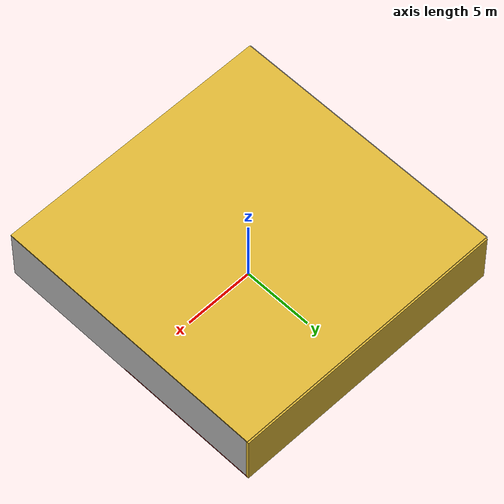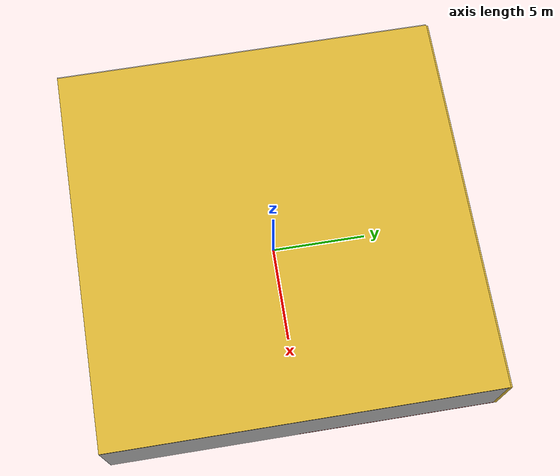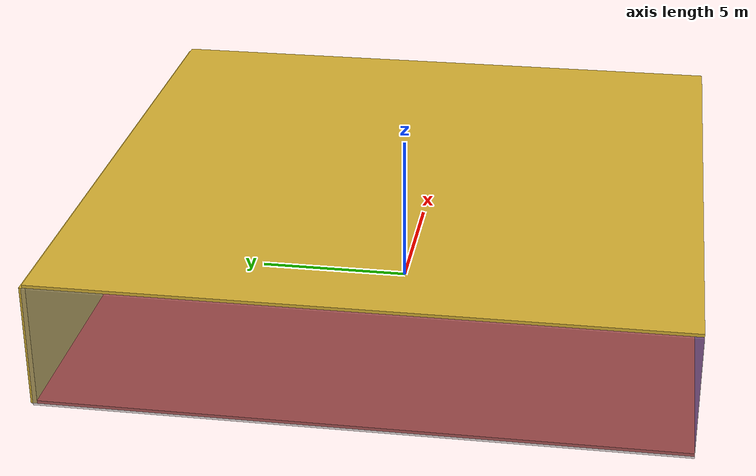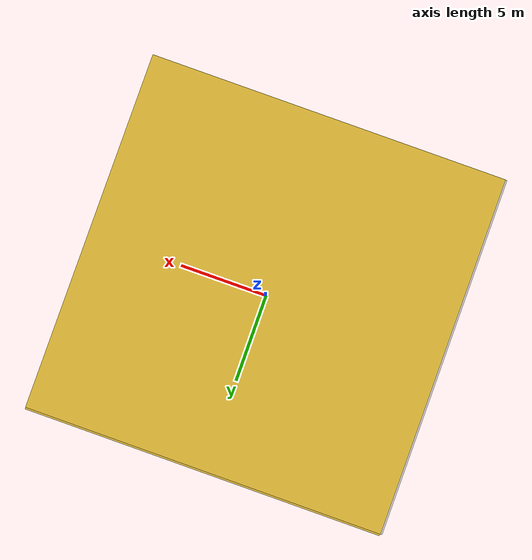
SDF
<sdf version="1.4">
 <world name="default">
  <physics type="ode">
   <max_step_size>0.001</max_step_size>
   <real_time_factor>1</real_time_factor>
   <real_time_update_rate>1000</real_time_update_rate>
   <gravity>0 0 -9.8</gravity>
  </physics>
  <scene><ambient>0.4 0.4 0.4 1</ambient><background>0.7 0.7 0.7 1</background><shadows>1</shadows></scene>
  <model name="Surrounding">
   <static>1</static>
   <link name="Ceiling">
    <collision name="Ceiling_Collision"><geometry><box><size>20 20 0.1</size></box></geometry></collision>
    <visual name="Ceiling_Visual">
     <geometry><box><size>20 20 0.1</size></box></geometry>
     <material>
      <script><uri>file://media/materials/scripts/gazebo.material</uri><name>Gazebo/Gold</name></script>
     </material>
    </visual>
    <pose>0 0 4.05 0 0 0</pose>
   </link>
   <link name="Wall_South">
    <collision name="Wall_South_Collision">
     <geometry><box><size>20 0 4</size></box></geometry>
     <pose>0 0 2 0 -0 0</pose>
    </collision>
    <visual name="Wall_South_Visual">
     <pose>0 0 2 0 -0 0</pose>
     <geometry><box><size>20 0 4</size></box></geometry>
     <material>
      <script><uri>file://media/materials/scripts/gazebo.material</uri><name>Gazebo/Purple</name></script>
     </material>
    </visual>
    <velocity_decay><linear>0</linear><angular>0</angular></velocity_decay>
    <pose>0 -10 0 0 -0 0</pose>
   </link>
   <link name="Wall_East">
    <collision name="Wall_21_Collision">
     <geometry><box><size>20 0 4</size></box></geometry>
     <pose>0 0 2 0 -0 0</pose>
    </collision>
    <visual name="Wall_21_Visual">
     <pose>0 0 2 0 -0 0</pose>
     <geometry><box><size>20 0 4</size></box></geometry>
     <material>
      <script><uri>file://media/materials/scripts/gazebo.material</uri><name>Gazebo/LightOff</name></script>
     </material>
    </visual>
    <velocity_decay><linear>0</linear><angular>0</angular></velocity_decay>
    <pose>10 0 0 0 -0 1.5708</pose>
   </link>
   <link name="Wall_North">
    <collision name="Wall_22_Collision">
     <geometry><box><size>20 0.2 4</size></box></geometry>
     <pose>0 0 2 0 -0 0</pose>
    </collision>
    <visual name="Wall_22_Visual">
     <pose>0 0 2 0 -0 0</pose>
     <geometry><box><size>20 0.2 4</size></box></geometry>
     <material>
      <script><uri>file://media/materials/scripts/gazebo.material</uri><name>Gazebo/Gold</name></script>
     </material>
    </visual>
    <velocity_decay><linear>0</linear><angular>0</angular></velocity_decay>
    <pose>0 10 0 0 -0 0</pose>
   </link>
   <link name="Wall_West">
    <collision name="Wall_23_Collision">
     <geometry><box><size>20 0.2 4</size></box></geometry>
     <pose>0 0 2 0 -0 0</pose>
    </collision>
    <visual name="Wall_23_Visual">
     <pose>0 0 2 0 -0 0</pose>
     <geometry><box><size>20 0.2 4</size></box></geometry>
     <material>
      <script><uri>file://media/materials/scripts/gazebo.material</uri><name>Gazebo/GreyTransparent</name></script>
     </material>
    </visual>
    <velocity_decay><linear>0</linear><angular>0</angular></velocity_decay>
    <pose>-10 0 0 0 0 -1.5708</pose>
   </link>
   <link name="Ground_link">
    <collision name="collision">
     <pose>0 0 .05 0 -0 0</pose>
     <geometry><box><size>20 20 0.1</size></box></geometry>
    </collision>
    <visual name="visual">
     <pose>0 0 .05 0 -0 0</pose>
     <geometry><box><size>20 20 0.1</size></box></geometry>
     <material>
      <script><uri>file://media/materials/scripts/gazebo.material</uri><name>Gazebo/Red</name></script>
     </material>
    </visual>
   </link>
   <static>1</static>
  </model>
  <spherical_coordinates>
   <surface_model>EARTH_WGS84</surface_model>
   <latitude_deg>0</latitude_deg>
   <longitude_deg>0</longitude_deg>
   <elevation>0</elevation>
   <heading_deg>0</heading_deg>
  </spherical_coordinates>
  <light name="lightball_0" type="diffuse">
   <diffuse>0.8 0.8 0.8 1</diffuse>
   <specular>0.2 0.2 0.2 1</specular>
   <attenuation>
    <range>100</range>
    <constant>0.7</constant>
    <linear>0.01</linear>
    <quadratic>0.001</quadratic>
   </attenuation>
   <direction>-0.5 0.1 -0.9</direction>
   <pose>-1.27389580333 -0.878908120888 2.73779341928 0 0 0</pose>
  </light>
  <light name="lightball_1" type="diffuse">
   <diffuse>0.8 0.8 0.8 1</diffuse>
   <specular>0.2 0.2 0.2 1</specular>
   <attenuation>
    <range>100</range>
    <constant>0.7</constant>
    <linear>0.01</linear>
    <quadratic>0.001</quadratic>
   </attenuation>
   <direction>-0.5 0.1 -0.9</direction>
   <pose>-8.90560347713 8.31405056356 1.85146506405 0 0 0</pose>
  </light>
  <light name="lightball_2" type="diffuse">
   <diffuse>0.8 0.8 0.8 1</diffuse>
   <specular>0.2 0.2 0.2 1</specular>
   <attenuation>
    <range>100</range>
    <constant>0.7</constant>
    <linear>0.01</linear>
    <quadratic>0.001</quadratic>
   </attenuation>
   <direction>-0.5 0.1 -0.9</direction>
   <pose>-0.688253139558 2.826313812 3.37759505643 0 0 0</pose>
  </light>
  <light name="lightball_3" type="diffuse">
   <diffuse>0.8 0.8 0.8 1</diffuse>
   <specular>0.2 0.2 0.2 1</specular>
   <attenuation>
    <range>100</range>
    <constant>0.7</constant>
    <linear>0.01</linear>
    <quadratic>0.001</quadratic>
   </attenuation>
   <direction>-0.5 0.1 -0.9</direction>
   <pose>8.97736052714 1.6108335002 3.11456438675 0 0 0</pose>
  </light>
  <light name="lightball_4" type="diffuse">
   <diffuse>0.8 0.8 0.8 1</diffuse>
   <specular>0.2 0.2 0.2 1</specular>
   <attenuation>
    <range>100</range>
    <constant>0.7</constant>
    <linear>0.01</linear>
    <quadratic>0.001</quadratic>
   </attenuation>
   <direction>-0.5 0.1 -0.9</direction>
   <pose>-4.44938622726 -6.99155554905 3.40265022357 0 0 0</pose>
  </light>
  <light name="lightball_5" type="diffuse">
   <diffuse>0.8 0.8 0.8 1</diffuse>
   <specular>0.2 0.2 0.2 1</specular>
   <attenuation>
    <range>100</range>
    <constant>0.7</constant>
    <linear>0.01</linear>
    <quadratic>0.001</quadratic>
   </attenuation>
   <direction>-0.5 0.1 -0.9</direction>
   <pose>-3.21991962095 8.58193466293 1.15530329017 0 0 0</pose>
  </light>
  <light name="lightball_6" type="diffuse">
   <diffuse>0.8 0.8 0.8 1</diffuse>
   <specular>0.2 0.2 0.2 1</specular>
   <attenuation>
    <range>100</range>
    <constant>0.7</constant>
    <linear>0.01</linear>
    <quadratic>0.001</quadratic>
   </attenuation>
   <direction>-0.5 0.1 -0.9</direction>
   <pose>-1.69120417049 -2.38129482565 2.79049132287 0 0 0</pose>
  </light>
  <light name="lightball_7" type="diffuse">
   <diffuse>0.8 0.8 0.8 1</diffuse>
   <specular>0.2 0.2 0.2 1</specular>
   <attenuation>
    <range>100</range>
    <constant>0.7</constant>
    <linear>0.01</linear>
    <quadratic>0.001</quadratic>
   </attenuation>
   <direction>-0.5 0.1 -0.9</direction>
   <pose>3.39979091714 -1.55033893516 3.75180441251 0 0 0</pose>
  </light>
  <include>
   <uri>model://textured_shapes</uri>
   <pose>-1.22149834662 -8.22189652555 0 0 0 0.898517333561</pose>
  </include>
  <include>
   <uri>model://robocup_3Dsim_goal</uri>
   <pose>3.94342705096 -1.16056081008 0 0 0 1.971234182</pose>
  </include>
  <include><uri>model://cabinet</uri><pose>7.06513374382 -7.96602382207 0 0 0 0.153249841793</pose></include>
  <include><uri>model://cabinet</uri><pose>6.93841537267 4.79577164273 0 0 0 3.06932099114</pose></include>
 </world>
</sdf>

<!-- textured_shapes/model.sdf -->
<sdf version="1.6">
  <model name="textured_shapes">
    <pose>0 0 0.5 0 0 0</pose>
    <link name="box">
      <pose>0 -1.5 0 0 0 0</pose>
      <collision name="collision">
        <geometry>
          <box>
            <size>1 1 1</size>
          </box>
        </geometry>
      </collision>
      <visual name="visual">
        <geometry>
          <box>
            <size>1 1 1</size>
          </box>
        </geometry>
        <material>
          <script>
            <uri>model://../model_source/models/textured_shapes/materials/scripts</uri>
            <uri>model://../model_source/models/textured_shapes/materials/textures</uri>
            <name>TexturedShape/Squares</name>
          </script>
        </material>
      </visual>
    </link>
    <link name="sphere">
      <collision name="collision">
        <geometry>
          <sphere>
            <radius>0.5</radius>
          </sphere>
        </geometry>
      </collision>
      <visual name="visual">
        <geometry>
          <sphere>
            <radius>0.5</radius>
          </sphere>
        </geometry>
        <material>
          <script>
            <uri>model://../model_source/models/textured_shapes/materials/scripts</uri>
            <uri>model://../model_source/models/textured_shapes/materials/textures</uri>
            <name>TexturedShape/Squares</name>
          </script>
        </material>
      </visual>
    </link>
    <link name="cylinder">
      <pose>0 1.5 0 0 0 0</pose>
      <collision name="collision">
        <geometry>
          <cylinder>
            <radius>0.5</radius>
            <length>1</length>
          </cylinder>
        </geometry>
      </collision>
      <visual name="visual">
        <geometry>
          <cylinder>
            <radius>0.5</radius>
            <length>1</length>
          </cylinder>
        </geometry>
        <material>
          <script>
            <uri>model://../model_source/models/textured_shapes/materials/scripts</uri>
            <uri>model://../model_source/models/textured_shapes/materials/textures</uri>
            <name>TexturedShape/Squares</name>
          </script>
        </material>
      </visual>
    </link>
  </model>
</sdf>

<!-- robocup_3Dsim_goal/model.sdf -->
<sdf version="1.5">
  <model name="robocup_3d_goal">
    <static>true</static>
    <link name="left_post">
      <pose>0 1.05 0.45 0 0 0</pose>
      <collision name="collision">
        <geometry>
          <cylinder>
            <radius>0.05</radius>
            <length>0.9</length>
          </cylinder>
        </geometry>
      </collision>
      <visual name="visual">
        <geometry>
          <cylinder>
            <radius>0.05</radius>
            <length>0.9</length>
          </cylinder>
        </geometry>
        <material>
          <script>
            <uri>file://media/materials/scripts/gazebo.material</uri>
            <name>Gazebo/ZincYellow</name>
          </script>
        </material>
      </visual>
    </link>
    <link name="left_support_horiz_lower">
      <pose>0.30 1.05 0.01 0 0 0</pose>
      <collision name="collision">
        <geometry>
          <box>
            <size>0.50 0.02 0.02</size>
          </box>
        </geometry>
      </collision>
      <visual name="visual">
        <geometry>
          <box>
            <size>0.50 0.02 0.02</size>
          </box>
        </geometry>
        <material>
          <script>
            <uri>file://media/materials/scripts/gazebo.material</uri>
            <name>Gazebo/White</name>
          </script>
        </material>
      </visual>
    </link>
    <link name="left_support_horiz_upper">
      <pose>0.30 1.05 0.79 0 0 0</pose>
      <collision name="collision">
        <geometry>
          <box>
            <size>0.50 0.02 0.02</size>
          </box>
        </geometry>
      </collision>
      <visual name="visual">
        <geometry>
          <box>
            <size>0.50 0.02 0.02</size>
          </box>
        </geometry>
        <material>
          <script>
            <uri>file://media/materials/scripts/gazebo.material</uri>
            <name>Gazebo/White</name>
          </script>
        </material>
      </visual>
    </link>
    <link name="left_support_vertical">
      <pose>0.56 1.05 0.4 0 1.5708 0</pose>
      <collision name="collision">
        <geometry>
          <box>
            <size>0.80 0.02 0.02</size>
          </box>
        </geometry>
      </collision>
      <visual name="visual">
        <geometry>
          <box>
            <size>0.80 0.02 0.02</size>
          </box>
        </geometry>
        <material>
          <script>
            <uri>file://media/materials/scripts/gazebo.material</uri>
            <name>Gazebo/White</name>
          </script>
        </material>
      </visual>
    </link>
    <link name="right_support_horiz_lower">
      <pose>0.30 -1.05 0.01 0 0 0</pose>
      <collision name="collision">
        <geometry>
          <box>
            <size>0.50 0.02 0.02</size>
          </box>
        </geometry>
      </collision>
      <visual name="visual">
        <geometry>
          <box>
            <size>0.50 0.02 0.02</size>
          </box>
        </geometry>
        <material>
          <script>
            <uri>file://media/materials/scripts/gazebo.material</uri>
            <name>Gazebo/White</name>
          </script>
        </material>
      </visual>
    </link>
    <link name="right_support_horiz_upper">
      <pose>0.30 -1.05 0.79 0 0 0</pose>
      <collision name="collision">
        <geometry>
          <box>
            <size>0.50 0.02 0.02</size>
          </box>
        </geometry>
      </collision>
      <visual name="visual">
        <geometry>
          <box>
            <size>0.50 0.02 0.02</size>
          </box>
        </geometry>
        <material>
          <script>
            <uri>file://media/materials/scripts/gazebo.material</uri>
            <name>Gazebo/White</name>
          </script>
        </material>
      </visual>
    </link>
    <link name="right_support_vertical">
      <pose>0.56 -1.05 0.4 0 1.5708 0</pose>
      <collision name="collision">
        <geometry>
          <box>
            <size>0.80 0.02 0.02</size>
          </box>
        </geometry>
      </collision>
      <visual name="visual">
        <geometry>
          <box>
            <size>0.80 0.02 0.02</size>
          </box>
        </geometry>
        <material>
          <script>
            <uri>file://media/materials/scripts/gazebo.material</uri>
            <name>Gazebo/White</name>
          </script>
        </material>
      </visual>
    </link>
    <link name="center_support_horiz_lower">
      <pose>0.56 0 0.01 0 1.5708 0</pose>
      <collision name="collision">
        <geometry>
          <box>
            <size>0.02 2.08 0.02</size>
          </box>
        </geometry>
      </collision>
      <visual name="visual">
        <geometry>
          <box>
            <size>0.02 2.08 0.02</size>
          </box>
        </geometry>
        <material>
          <script>
            <uri>file://media/materials/scripts/gazebo.material</uri>
            <name>Gazebo/White</name>
          </script>
        </material>
      </visual>
    </link>
    <link name="center_support_horiz_upper">
      <pose>0.56 0 0.79 0 1.5708 0</pose>
      <collision name="collision">
        <geometry>
          <box>
            <size>0.02 2.08 0.02</size>
          </box>
        </geometry>
      </collision>
      <visual name="visual">
        <geometry>
          <box>
            <size>0.02 2.08 0.02</size>
          </box>
        </geometry>
        <material>
          <script>
            <uri>file://media/materials/scripts/gazebo.material</uri>
            <name>Gazebo/White</name>
          </script>
        </material>
      </visual>
    </link>
    <link name="right_post">
      <pose>0 -1.05 0.45 0 0 0</pose>
      <collision name="collision">
        <geometry>
          <cylinder>
            <radius>0.05</radius>
            <length>0.9</length>
          </cylinder>
        </geometry>
      </collision>
      <visual name="visual">
        <geometry>
          <cylinder>
            <radius>0.05</radius>
            <length>0.9</length>
          </cylinder>
        </geometry>
        <material>
          <script>
            <uri>file://media/materials/scripts/gazebo.material</uri>
            <name>Gazebo/ZincYellow</name>
          </script>
        </material>
      </visual>
    </link>
    <link name="crossbar">
      <pose>0 0 0.85 1.57 1.57 0</pose>
      <collision name="collision">
        <geometry>
          <cylinder>
            <radius>0.05</radius>
            <length>2.0</length>
          </cylinder>
        </geometry>
      </collision>
      <visual name="visual">
        <geometry>
          <cylinder>
            <radius>0.05</radius>
            <length>2.0</length>
          </cylinder>
        </geometry>
        <material>
          <script>
            <uri>file://media/materials/scripts/gazebo.material</uri>
            <name>Gazebo/ZincYellow</name>
          </script>
        </material>
      </visual>
    </link>
    <link name="center_net">
      <pose>0.56 0 0.40 0 0 0</pose>
      <collision name="collision">
        <geometry>
          <box>
            <size>0.01 2.1 0.80</size>
          </box>
        </geometry>
      </collision>
      <visual name="visual">
        <geometry>
          <box>
            <size>0.01 2.1 0.80</size>
          </box>
        </geometry>
        <material>
          <script>
            <uri>model://../model_source/models/robocup09_spl_field/materials/scripts/</uri>
            <uri>model://../model_source/models/robocup09_spl_field/materials/textures/</uri>
            <name>RoboCup/Net</name>
          </script>
        </material>
      </visual>
    </link>
    <link name="left_net">
      <pose>0.30 1.05 0.40 0 0 0</pose>
      <collision name="collision">
        <geometry>
          <box>
            <size>0.50 0.01 0.76</size>
          </box>
        </geometry>
      </collision>
      <visual name="visual">
        <geometry>
          <box>
            <size>0.50 0.01 0.76</size>
          </box>
        </geometry>
        <material>
          <script>
            <uri>model://../model_source/models/robocup09_spl_field/materials/scripts/</uri>
            <uri>model://../model_source/models/robocup09_spl_field/materials/textures/</uri>
            <name>RoboCup/Net</name>
          </script>
        </material>
      </visual>
    </link>
    <link name="right_net">
      <pose>0.30 -1.05 0.40 0 0 0</pose>
      <collision name="collision">
        <geometry>
          <box>
            <size>0.50 0.01 0.76</size>
          </box>
        </geometry>
      </collision>
      <visual name="visual">
        <geometry>
          <box>
            <size>0.50 0.01 0.76</size>
          </box>
        </geometry>
        <material>
          <script>
            <uri>model://../model_source/models/robocup09_spl_field/materials/scripts/</uri>
            <uri>model://../model_source/models/robocup09_spl_field/materials/textures/</uri>
            <name>RoboCup/Net</name>
          </script>
        </material>
      </visual>
    </link>
  </model>
</sdf>

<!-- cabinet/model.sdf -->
<sdf version="1.5">
  <model name="cabinet">
    <static>true</static>
    <link name="cabinet_bottom_plate">
      <inertial>
        <pose>0 0 -1 0 0 0</pose>
        <inertia>
          <ixx>2.050000</ixx>
          <ixy>0</ixy>
          <ixz>0</ixz>
          <iyy>2.050000</iyy>
          <iyz>0</iyz>
          <izz>2.050000</izz>
        </inertia>
        <mass>25.000000</mass>
      </inertial>
      <collision name="cabinet_bottom_plate_geom">
        <pose>0 0 0.010000 0 0 0</pose>
        <geometry>
          <box>
            <size>0.450000 0.450000 0.020000</size>
          </box>
        </geometry>
      </collision>
      <visual name="cabinet_bottom_plate_geom_visual">
        <pose>0 0 0.010000 0 0 0</pose>
        <geometry>
          <box>
            <size>0.450000 0.450000 0.020000</size>
          </box>
        </geometry>
        <material>
          <script>
            <uri>model://media/materials/scripts/gazebo.material</uri>
            <name>Gazebo/Wood</name>
          </script>
        </material>
      </visual>
      <collision name="cabinet_bottom_plate_geom_cabinet_back_plate">
        <pose>0.235000 0 0.510000 0 0 0</pose>
        <geometry>
          <box>
            <size>0.020000 0.450000 1.020000</size>
          </box>
        </geometry>
      </collision>
      <visual name="cabinet_bottom_plate_geom_cabinet_back_plate_visual">
        <pose>0.235000 0 0.510000 0 0 0</pose>
        <geometry>
          <box>
            <size>0.020000 0.450000 1.020000</size>
          </box>
        </geometry>
        <material>
          <script>
            <uri>model://media/materials/scripts/gazebo.material</uri>
            <name>Gazebo/Wood</name>
          </script>
        </material>
      </visual>
      <collision name="cabinet_bottom_plate_geom_cabinet_left_plate">
        <pose>0 0.235000 0.510000 0 0 0</pose>
        <geometry>
          <box>
            <size>0.450000 0.020000 1.020000</size>
          </box>
        </geometry>
      </collision>
      <visual name="cabinet_bottom_plate_geom_cabinet_left_plate_visual">
        <pose>0 0.235000 0.510000 0 0 0</pose>
        <geometry>
          <box>
            <size>0.450000 0.020000 1.020000</size>
          </box>
        </geometry>
        <material>
          <script>
            <uri>model://media/materials/scripts/gazebo.material</uri>
            <name>Gazebo/Wood</name>
          </script>
        </material>
      </visual>
      <collision name="cabinet_bottom_plate_geom_cabinet_middle_plate">
        <pose>0 0 0.510000 0 0 0</pose>
        <geometry>
          <box>
            <size>0.450000 0.450000 0.020000</size>
          </box>
        </geometry>
      </collision>
      <visual name="cabinet_bottom_plate_geom_cabinet_middle_plate_visual">
        <pose>0 0 0.510000 0 0 0</pose>
        <geometry>
          <box>
            <size>0.450000 0.450000 0.020000</size>
          </box>
        </geometry>
        <material>
          <script>
            <uri>model://media/materials/scripts/gazebo.material</uri>
            <name>Gazebo/Wood</name>
          </script>
        </material>
      </visual>
      <collision name="cabinet_bottom_plate_geom_cabinet_right_plate">
        <pose>0 -0.235000 0.510000 0 0 0</pose>
        <geometry>
          <box>
            <size>0.450000 0.020000 1.020000</size>
          </box>
        </geometry>
      </collision>
      <visual name="cabinet_bottom_plate_geom_cabinet_right_plate_visual">
        <pose>0 -0.235000 0.510000 0 0 0</pose>
        <geometry>
          <box>
            <size>0.450000 0.020000 1.020000</size>
          </box>
        </geometry>
        <material>
          <script>
            <uri>model://media/materials/scripts/gazebo.material</uri>
            <name>Gazebo/Wood</name>
          </script>
        </material>
      </visual>
      <collision name="cabinet_bottom_plate_geom_cabinet_top_plate">
        <pose>0 0 1.010000 0 0 0</pose>
        <geometry>
          <box>
            <size>0.450000 0.450000 0.020000</size>
          </box>
        </geometry>
      </collision>
      <visual name="cabinet_bottom_plate_geom_cabinet_top_plate_visual">
        <pose>0 0 1.010000 0 0 0</pose>
        <geometry>
          <box>
            <size>0.450000 0.450000 0.020000</size>
          </box>
        </geometry>
        <material>
          <script>
            <uri>model://media/materials/scripts/gazebo.material</uri>
            <name>Gazebo/Wood</name>
          </script>
        </material>
      </visual>
    </link>
  </model>
</sdf>
